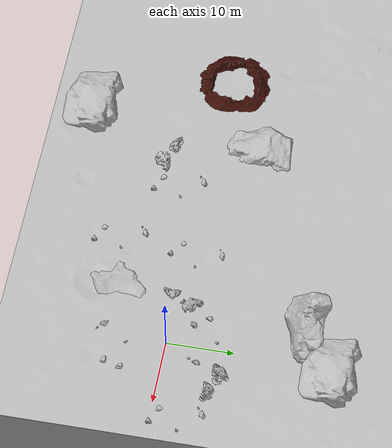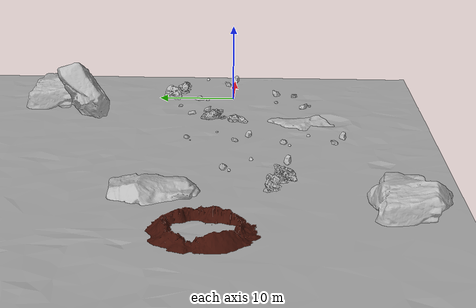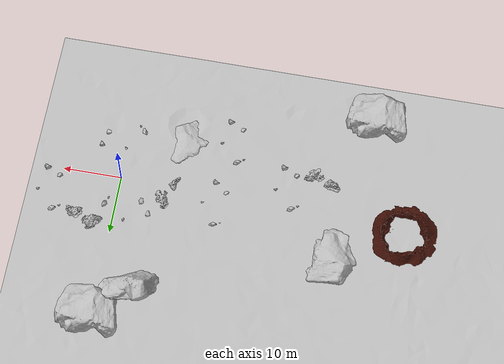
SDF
<sdf version="1.4">
 <world name="default">
  <scene>
   <ambient>0.30 0.30 0.30 1.0</ambient>
   <background>0.792 0.588 0.259 1</background>
   <origin_visual>0</origin_visual>
   <grid>false</grid>
   <shadows>true</shadows>
  </scene>
  <physics type="ode">
   <max_step_size>0.004</max_step_size>
   <real_time_factor>1.0</real_time_factor>
   <real_time_update_rate>250</real_time_update_rate>
   <gravity>0 0 -3.711</gravity>
  </physics>
  <light name="sun_directional" type="directional">
   <pose>200 0 14 0 0 0</pose>
   <diffuse>0.7 0.7 0.7 1</diffuse>
   <specular>0.001 0.001 0.001 1</specular>
   <direction>-1 -0.1 -0.15</direction>
   <attenuation><range>1000</range><constant>1</constant><linear>0</linear></attenuation>
  </light>
  <include>
   <uri>model://curiosity_path</uri>
   <name>curiosity_path</name>
   <pose>-136.5 127 14.21 0 0 0</pose>
  </include>
  <include><uri>model://rockformation</uri><name>rockformation</name><pose>1 -9 -0.65 0 0 1.75</pose></include>
  <include>
   <uri>model://rockformation</uri>
   <name>rockformation2</name>
   <pose>-1 4 -0.5 3.141593 -0.008 1.7915</pose>
  </include>
  <include>
   <uri>model://rockformation</uri>
   <name>rockformation3</name>
   <pose>10.401 4.11 -0.65 0 0 0</pose>
  </include>
  <include>
   <uri>model://rockformation</uri>
   <name>rockformation4</name>
   <pose>-18.77 -9.72 -0.75 0 0 0</pose>
  </include>
  <include>
   <uri>model://rockformation</uri>
   <name>rockformation5</name>
   <pose>-29.2 -2.79 -0.6 0 0 0</pose>
  </include>
  <include>
   <uri>model://rockformation</uri>
   <name>rockformation7</name>
   <pose>-17.39 2.28 -0.9 0 0 -0.2</pose>
  </include>
  <include><uri>model://jaggedrock</uri><name>jaggedrock</name><pose>5 7 -0.75 0 0 -0.7</pose></include>
  <include><uri>model://jaggedrock</uri><name>jaggedrock2</name><pose>-9 1 -1 -0.2499 0 -2.399</pose></include>
  <include><uri>model://jaggedrock</uri><name>jaggedrock3</name><pose>-33.515 -5 -.85 0 0 2.4</pose></include>
  <include><uri>model://rock9</uri><name>rock9</name><pose>-4.844 19.6 0 1.05 .6 0</pose></include>
  <include><uri>model://rock9</uri><name>rock9_1</name><pose>1.849 23.56 0 0 0 0</pose></include>
  <include><uri>model://rock9</uri><name>rock9_2</name><pose>-39.766 -19.65 -0.4 0 0 0</pose></include>
  <include><uri>model://rock9</uri><name>rock9_3</name><pose>-38.024 6.469 -2 0 0 -1.7</pose></include>
  <include><uri>model://rock9</uri><name>rock9_4</name><pose>-8.1 -8.18 -2.85 0 0 .85</pose></include>
  <include><uri>model://crater</uri><name>crater</name><pose>-48.502 1.5 -2.1 0 0 0</pose></include>
 </world>
</sdf>

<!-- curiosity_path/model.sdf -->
<sdf version="1.5">
  <model name="curiosity_path">
      <static>true</static>
      <link name='link'>
       <collision name="collision">
        <geometry>
            <mesh>
              <uri>model://curiosity_path/meshes/curiosity_path25k.stl</uri>
              <scale>1 1 1</scale>
            </mesh>
        </geometry>
        <surface>
          <contact>
             <collide_bitmask>0xffff</collide_bitmask>
          </contact>
          <friction>
            <ode>
              <mu>100</mu>
              <mu2>50</mu2>
            </ode>
          </friction>
        </surface>
      </collision>
        <visual name='visual'>
          <geometry>
            <mesh>
              <uri>model://curiosity_path/meshes/curiosity_path25k.dae</uri>
              <scale>1 1 1</scale>
            </mesh>
          </geometry>
        </visual>
      </link>
  </model>
</sdf>

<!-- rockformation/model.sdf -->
<sdf version='1.4'>
  <model name="rockformation">
    <static>true</static>
    <link name="link">
        <inertial>
            <mass>1</mass>
            <inertia>
              <ixx>0.166667</ixx>
              <ixy>0</ixy>
              <ixz>0</ixz>
              <iyy>0.166667</iyy>
              <iyz>0</iyz>
              <izz>0.166667</izz>
            </inertia>
            <pose frame=''>0 0 0 0 -0 0</pose>
         </inertial>

         <self_collide>1</self_collide>
         <kinematic>0</kinematic>
         <gravity>0</gravity>

          <collision name="collision">
            <geometry>
              <mesh>
                <uri>model://rockformation/meshes/rockformation.dae</uri>
              </mesh>
            </geometry>
            <surface>
              <friction>
                <ode>
                  <mu>1</mu>
                  <mu2>1</mu2>
                  <fdir1>0 0 0</fdir1>
                  <slip1>0</slip1>
                  <slip2>0</slip2>
                </ode>
                <torsional>
                  <coefficient>1</coefficient>
                  <patch_radius>0</patch_radius>
                  <surface_radius>0</surface_radius>
                  <use_patch_radius>1</use_patch_radius>
                  <ode>
                    <slip>0</slip>
                  </ode>
                </torsional>
              </friction>
              <bounce>
                <restitution_coefficient>0</restitution_coefficient>
                <threshold>1e+06</threshold>
              </bounce>
              <contact>
                <collide_without_contact>0</collide_without_contact>
                <collide_without_contact_bitmask>1</collide_without_contact_bitmask>
                <collide_bitmask>1</collide_bitmask>
                <ode>
                  <soft_cfm>0</soft_cfm>
                  <soft_erp>0.2</soft_erp>
                  <kp>1e+13</kp>
                  <kd>1</kd>
                  <max_vel>0.01</max_vel>
                  <min_depth>0</min_depth>
                </ode>
                <bullet>
                  <split_impulse>1</split_impulse>
                  <split_impulse_penetration_threshold>-0.01</split_impulse_penetration_threshold>
                  <soft_cfm>0</soft_cfm>
                  <soft_erp>0.2</soft_erp>
                  <kp>1e+13</kp>
                  <kd>1</kd>
                </bullet>
              </contact>
            </surface>
          </collision>

          <visual name="visual">
            <geometry>
              <mesh>
                <uri>model://rockformation/meshes/rockformation.dae</uri>
              </mesh>
            </geometry>
          </visual>
    </link>
  </model>
</sdf>

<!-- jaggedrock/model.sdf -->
<sdf version='1.4'>
  <model name="jaggedrock">
    <static>true</static>
    <link name="link">
        <inertial>
            <mass>1</mass>
            <inertia>
              <ixx>0.166667</ixx>
              <ixy>0</ixy>
              <ixz>0</ixz>
              <iyy>0.166667</iyy>
              <iyz>0</iyz>
              <izz>0.166667</izz>
            </inertia>
            <pose frame=''>0 0 0 0 -0 0</pose>
         </inertial>

         <self_collide>1</self_collide>
         <kinematic>0</kinematic>
         <gravity>0</gravity>

          <collision name="collision">
            <geometry>
              <mesh>
                <uri>model://jaggedrock/meshes/jaggedrock_texture.dae</uri>
              </mesh>
            </geometry>
            <surface>
              <friction>
                <ode>
                  <mu>1</mu>
                  <mu2>1</mu2>
                  <fdir1>0 0 0</fdir1>
                  <slip1>0</slip1>
                  <slip2>0</slip2>
                </ode>
                <torsional>
                  <coefficient>1</coefficient>
                  <patch_radius>0</patch_radius>
                  <surface_radius>0</surface_radius>
                  <use_patch_radius>1</use_patch_radius>
                  <ode>
                    <slip>0</slip>
                  </ode>
                </torsional>
              </friction>
              <bounce>
                <restitution_coefficient>0</restitution_coefficient>
                <threshold>1e+06</threshold>
              </bounce>
              <contact>
                <collide_without_contact>0</collide_without_contact>
                <collide_without_contact_bitmask>1</collide_without_contact_bitmask>
                <collide_bitmask>1</collide_bitmask>
                <ode>
                  <soft_cfm>0</soft_cfm>
                  <soft_erp>0.2</soft_erp>
                  <kp>1e+13</kp>
                  <kd>1</kd>
                  <max_vel>0.01</max_vel>
                  <min_depth>0</min_depth>
                </ode>
                <bullet>
                  <split_impulse>1</split_impulse>
                  <split_impulse_penetration_threshold>-0.01</split_impulse_penetration_threshold>
                  <soft_cfm>0</soft_cfm>
                  <soft_erp>0.2</soft_erp>
                  <kp>1e+13</kp>
                  <kd>1</kd>
                </bullet>
              </contact>
            </surface>
          </collision>

          <visual name="visual">
            <geometry>
              <mesh>
                <uri>model://jaggedrock/meshes/jaggedrock_texture.dae</uri>
              </mesh>
            </geometry>
          </visual>
    </link>
  </model>
</sdf>

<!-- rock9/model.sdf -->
<sdf version='1.4'>
  <model name="rock9">
    <static>true</static>
    <link name="link">
      <inertial>
        <mass>1</mass>
        <inertia>
          <ixx>0.166667</ixx>
          <ixy>0</ixy>
          <ixz>0</ixz>
          <iyy>0.166667</iyy>
          <iyz>0</iyz>
          <izz>0.166667</izz>
        </inertia>
        <pose frame=''>0 0 0 0 -0 0</pose>
      </inertial>

      <self_collide>1</self_collide>
      <kinematic>0</kinematic>
      <gravity>1</gravity>

      <collision name="collision">
        <geometry>
          <mesh>
            <uri>model://rock9/meshes/rock9.dae</uri>
          </mesh>
        </geometry>
        <surface>
          <friction>
            <ode>
              <mu>1</mu>
              <mu2>1</mu2>
              <fdir1>0 0 0</fdir1>
              <slip1>0</slip1>
              <slip2>0</slip2>
            </ode>
            <torsional>
              <coefficient>1</coefficient>
              <patch_radius>0</patch_radius>
              <surface_radius>0</surface_radius>
              <use_patch_radius>1</use_patch_radius>
              <ode>
                <slip>0</slip>
              </ode>
            </torsional>
          </friction>
          <bounce>
            <restitution_coefficient>0</restitution_coefficient>
            <threshold>1e+06</threshold>
          </bounce>
          <contact>
            <collide_without_contact>0</collide_without_contact>
            <collide_without_contact_bitmask>1</collide_without_contact_bitmask>
            <collide_bitmask>1</collide_bitmask>
            <ode>
              <soft_cfm>0</soft_cfm>
              <soft_erp>0.2</soft_erp>
              <kp>1e+13</kp>
              <kd>1</kd>
              <max_vel>0.01</max_vel>
              <min_depth>0</min_depth>
            </ode>
            <bullet>
              <split_impulse>1</split_impulse>
              <split_impulse_penetration_threshold>-0.01</split_impulse_penetration_threshold>
              <soft_cfm>0</soft_cfm>
              <soft_erp>0.2</soft_erp>
              <kp>1e+13</kp>
              <kd>1</kd>
            </bullet>
          </contact>
        </surface>
      </collision>

      <visual name="visual">
        <geometry>
          <mesh>
            <uri>model://rock9/meshes/rock9.dae</uri>
          </mesh>
        </geometry>
      </visual>
    </link>
  </model>
</sdf>

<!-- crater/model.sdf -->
<sdf version="1.4">
  <model name="crater">
      <static>1</static>
      <link name='link'>
        <inertial>
          <mass>0.25</mass>
          <inertia>
            <ixx>0.00015</ixx>
            <ixy>0.000000</ixy>
            <ixz>0.000000</ixz>
            <iyy>0.00015</iyy>
            <iyz>0.000000</iyz>
            <izz>0.00015</izz>
          </inertia>
        </inertial>
        <collision name='collision'>
          <geometry>
            <mesh>
              <uri>model://crater/meshes/crater_martian_red.dae</uri>
              <scale>1 1 1</scale>
            </mesh>
          </geometry>
          <surface>
            <friction>
              <ode>
                <mu>30.0</mu>
                <mu2>30.0</mu2>
              </ode>
            </friction>
            <contact>
              <ode>
                <kp>1000000.0</kp>
                <kd>100.0</kd>
                <max_vel>1.0</max_vel>
                <min_depth>0.002</min_depth>
              </ode>
            </contact>
          </surface>
        </collision>
        <visual name='visual'>
          <geometry>
            <mesh>
              <uri>model://crater/meshes/crater_martian_red.dae</uri>
              <scale>1 1 1</scale>
            </mesh>
          </geometry>
        </visual>
        <velocity_decay>
          <linear>0.000000</linear>
          <angular>0.000000</angular>
        </velocity_decay>
        <self_collide>0</self_collide>
        <kinematic>0</kinematic>
        <gravity>1</gravity>
      </link>
  </model>
</sdf>
